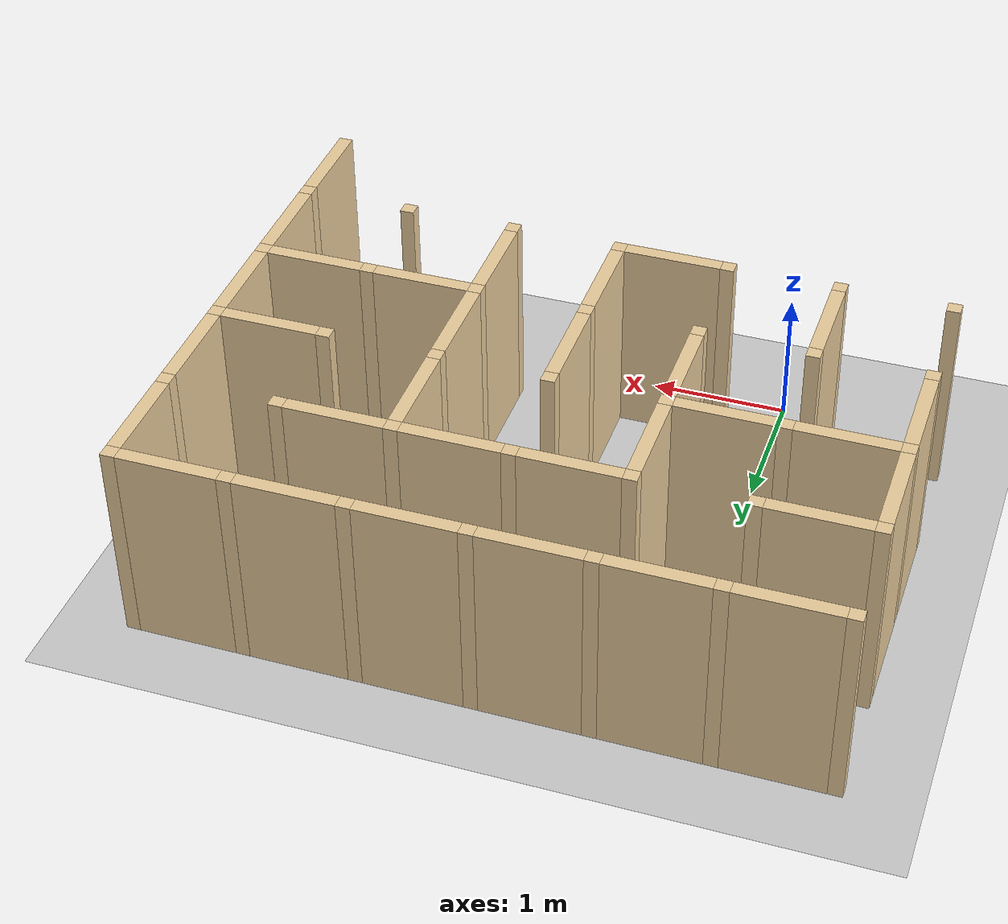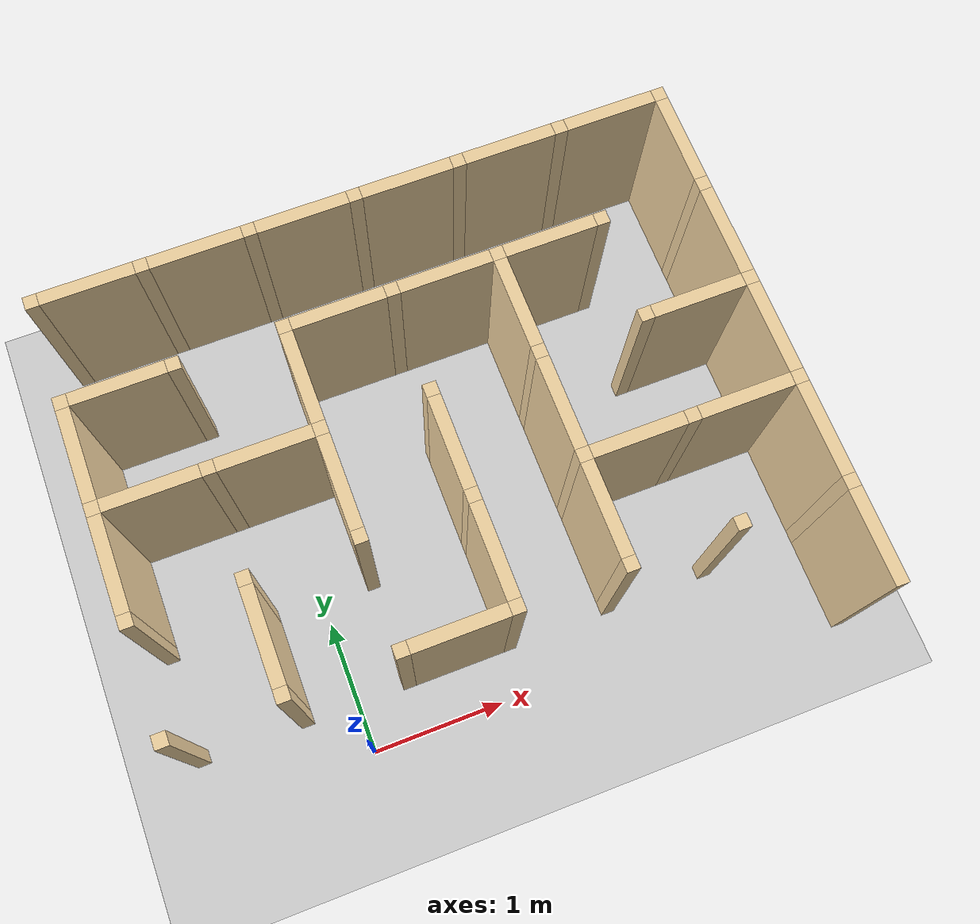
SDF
<sdf version="1.8">
 <world name="maze_world">
  <model name="ground_plane">
   <static>true</static>
   <link name="link">
    <collision name="collision">
     <geometry><plane><normal>0 0 1</normal><size>100 100</size></plane></geometry>
    </collision>
    <visual name="visual">
     <geometry><plane><normal>0 0 1</normal><size>100 100</size></plane></geometry>
     <material><ambient>0.8 0.8 0.8 1</ambient><diffuse>0.8 0.8 0.8 1</diffuse></material>
    </visual>
   </link>
  </model>
  <model name="maze">
   <link name="Wall_3_6_v">
    <collision name="Wall_3_6_v_c">
     <geometry><box><size>0.7 0.1 1.5</size></box></geometry>
     <pose>0 0 0.75 0 0 0</pose>
    </collision>
    <visual name="Wall_3_6_v_v">
     <pose>0 0 0.75 0 0 0</pose>
     <geometry><box><size>0.7 0.1 1.5</size></box></geometry>
     <material>
      <diffuse>0.921569 0.807843 0.615686 1</diffuse>
      <ambient>0.921569 0.807843 0.615686 1</ambient>
     </material>
    </visual>
    <pose>-1.2 1.6 0 0 0 1.5708</pose>
   </link>
   <link name="Wall_3_7_v">
    <collision name="Wall_3_7_v_c">
     <geometry><box><size>0.7 0.1 1.5</size></box></geometry>
     <pose>0 0 0.75 0 0 0</pose>
    </collision>
    <visual name="Wall_3_7_v_v">
     <pose>0 0 0.75 0 0 0</pose>
     <geometry><box><size>0.7 0.1 1.5</size></box></geometry>
     <material>
      <diffuse>0.921569 0.807843 0.615686 1</diffuse>
      <ambient>0.921569 0.807843 0.615686 1</ambient>
     </material>
    </visual>
    <pose>-1.2 2.4 0 0 0 1.5708</pose>
   </link>
   <link name="Wall_4_5_v">
    <collision name="Wall_4_5_v_c">
     <geometry><box><size>0.7 0.1 1.5</size></box></geometry>
     <pose>0 0 0.75 0 0 0</pose>
    </collision>
    <visual name="Wall_4_5_v_v">
     <pose>0 0 0.75 0 0 0</pose>
     <geometry><box><size>0.7 0.1 1.5</size></box></geometry>
     <material>
      <diffuse>0.921569 0.807843 0.615686 1</diffuse>
      <ambient>0.921569 0.807843 0.615686 1</ambient>
     </material>
    </visual>
    <pose>-0.4 0.8 0 0 0 1.5708</pose>
   </link>
   <link name="Wall_5_5_h">
    <collision name="Wall_5_5_h_c">
     <geometry><box><size>0.7 0.1 1.5</size></box></geometry>
     <pose>0 0 0.75 0 0 0</pose>
    </collision>
    <visual name="Wall_5_5_h_v">
     <pose>0 0 0.75 0 0 0</pose>
     <geometry><box><size>0.7 0.1 1.5</size></box></geometry>
     <material>
      <diffuse>0.921569 0.807843 0.615686 1</diffuse>
      <ambient>0.921569 0.807843 0.615686 1</ambient>
     </material>
    </visual>
    <pose>0.8 0.4 0 0 0 0</pose>
   </link>
   <link name="Wall_5_6_v">
    <collision name="Wall_5_6_v_c">
     <geometry><box><size>0.7 0.1 1.5</size></box></geometry>
     <pose>0 0 0.75 0 0 0</pose>
    </collision>
    <visual name="Wall_5_6_v_v">
     <pose>0 0 0.75 0 0 0</pose>
     <geometry><box><size>0.7 0.1 1.5</size></box></geometry>
     <material>
      <diffuse>0.921569 0.807843 0.615686 1</diffuse>
      <ambient>0.921569 0.807843 0.615686 1</ambient>
     </material>
    </visual>
    <pose>0.4 1.6 0 0 0 1.5708</pose>
   </link>
   <link name="Wall_5_7_v">
    <collision name="Wall_5_7_v_c">
     <geometry><box><size>0.7 0.1 1.5</size></box></geometry>
     <pose>0 0 0.75 0 0 0</pose>
    </collision>
    <visual name="Wall_5_7_v_v">
     <pose>0 0 0.75 0 0 0</pose>
     <geometry><box><size>0.7 0.1 1.5</size></box></geometry>
     <material>
      <diffuse>0.921569 0.807843 0.615686 1</diffuse>
      <ambient>0.921569 0.807843 0.615686 1</ambient>
     </material>
    </visual>
    <pose>0.4 2.4 0 0 0 1.5708</pose>
   </link>
   <link name="Wall_6_5_v">
    <collision name="Wall_6_5_v_c">
     <geometry><box><size>0.7 0.1 1.5</size></box></geometry>
     <pose>0 0 0.75 0 0 0</pose>
    </collision>
    <visual name="Wall_6_5_v_v">
     <pose>0 0 0.75 0 0 0</pose>
     <geometry><box><size>0.7 0.1 1.5</size></box></geometry>
     <material>
      <diffuse>0.921569 0.807843 0.615686 1</diffuse>
      <ambient>0.921569 0.807843 0.615686 1</ambient>
     </material>
    </visual>
    <pose>1.2 0.8 0 0 0 1.5708</pose>
   </link>
   <link name="Wall_6_6_v">
    <collision name="Wall_6_6_v_c">
     <geometry><box><size>0.7 0.1 1.5</size></box></geometry>
     <pose>0 0 0.75 0 0 0</pose>
    </collision>
    <visual name="Wall_6_6_v_v">
     <pose>0 0 0.75 0 0 0</pose>
     <geometry><box><size>0.7 0.1 1.5</size></box></geometry>
     <material>
      <diffuse>0.921569 0.807843 0.615686 1</diffuse>
      <ambient>0.921569 0.807843 0.615686 1</ambient>
     </material>
    </visual>
    <pose>1.2 1.6 0 0 0 1.5708</pose>
   </link>
   <link name="Wall_6_7_h">
    <collision name="Wall_6_7_h_c">
     <geometry><box><size>0.7 0.1 1.5</size></box></geometry>
     <pose>0 0 0.75 0 0 0</pose>
    </collision>
    <visual name="Wall_6_7_h_v">
     <pose>0 0 0.75 0 0 0</pose>
     <geometry><box><size>0.7 0.1 1.5</size></box></geometry>
     <material>
      <diffuse>0.921569 0.807843 0.615686 1</diffuse>
      <ambient>0.921569 0.807843 0.615686 1</ambient>
     </material>
    </visual>
    <pose>2.4 1.2 0 0 0 0</pose>
   </link>
   <link name="Wall_6_8_h">
    <collision name="Wall_6_8_h_c">
     <geometry><box><size>0.7 0.1 1.5</size></box></geometry>
     <pose>0 0 0.75 0 0 0</pose>
    </collision>
    <visual name="Wall_6_8_h_v">
     <pose>0 0 0.75 0 0 0</pose>
     <geometry><box><size>0.7 0.1 1.5</size></box></geometry>
     <material>
      <diffuse>0.921569 0.807843 0.615686 1</diffuse>
      <ambient>0.921569 0.807843 0.615686 1</ambient>
     </material>
    </visual>
    <pose>3.2 1.2 0 0 0 0</pose>
   </link>
   <link name="Wall_7_3_h">
    <collision name="Wall_7_3_h_c">
     <geometry><box><size>0.7 0.1 1.5</size></box></geometry>
     <pose>0 0 0.75 0 0 0</pose>
    </collision>
    <visual name="Wall_7_3_h_v">
     <pose>0 0 0.75 0 0 0</pose>
     <geometry><box><size>0.7 0.1 1.5</size></box></geometry>
     <material>
      <diffuse>0.921569 0.807843 0.615686 1</diffuse>
      <ambient>0.921569 0.807843 0.615686 1</ambient>
     </material>
    </visual>
    <pose>-0.8 2.0 0 0 0 0</pose>
   </link>
   <link name="Wall_7_4_h">
    <collision name="Wall_7_4_h_c">
     <geometry><box><size>0.7 0.1 1.5</size></box></geometry>
     <pose>0 0 0.75 0 0 0</pose>
    </collision>
    <visual name="Wall_7_4_h_v">
     <pose>0 0 0.75 0 0 0</pose>
     <geometry><box><size>0.7 0.1 1.5</size></box></geometry>
     <material>
      <diffuse>0.921569 0.807843 0.615686 1</diffuse>
      <ambient>0.921569 0.807843 0.615686 1</ambient>
     </material>
    </visual>
    <pose>0.0 2.0 0 0 0 0</pose>
   </link>
   <link name="Wall_7_5_v">
    <collision name="Wall_7_5_v_c">
     <geometry><box><size>0.7 0.1 1.5</size></box></geometry>
     <pose>0 0 0.75 0 0 0</pose>
    </collision>
    <visual name="Wall_7_5_v_v">
     <pose>0 0 0.75 0 0 0</pose>
     <geometry><box><size>0.7 0.1 1.5</size></box></geometry>
     <material>
      <diffuse>0.921569 0.807843 0.615686 1</diffuse>
      <ambient>0.921569 0.807843 0.615686 1</ambient>
     </material>
    </visual>
    <pose>2.0 0.8 0 0 0 1.5708</pose>
   </link>
   <link name="Wall_7_6_v">
    <collision name="Wall_7_6_v_c">
     <geometry><box><size>0.7 0.1 1.5</size></box></geometry>
     <pose>0 0 0.75 0 0 0</pose>
    </collision>
    <visual name="Wall_7_6_v_v">
     <pose>0 0 0.75 0 0 0</pose>
     <geometry><box><size>0.7 0.1 1.5</size></box></geometry>
     <material>
      <diffuse>0.921569 0.807843 0.615686 1</diffuse>
      <ambient>0.921569 0.807843 0.615686 1</ambient>
     </material>
    </visual>
    <pose>2.0 1.6 0 0 0 1.5708</pose>
   </link>
   <link name="Wall_7_7_v">
    <collision name="Wall_7_7_v_c">
     <geometry><box><size>0.7 0.1 1.5</size></box></geometry>
     <pose>0 0 0.75 0 0 0</pose>
    </collision>
    <visual name="Wall_7_7_v_v">
     <pose>0 0 0.75 0 0 0</pose>
     <geometry><box><size>0.7 0.1 1.5</size></box></geometry>
     <material>
      <diffuse>0.921569 0.807843 0.615686 1</diffuse>
      <ambient>0.921569 0.807843 0.615686 1</ambient>
     </material>
    </visual>
    <pose>2.0 2.4 0 0 0 1.5708</pose>
   </link>
   <link name="Wall_7_8_h">
    <collision name="Wall_7_8_h_c">
     <geometry><box><size>0.7 0.1 1.5</size></box></geometry>
     <pose>0 0 0.75 0 0 0</pose>
    </collision>
    <visual name="Wall_7_8_h_v">
     <pose>0 0 0.75 0 0 0</pose>
     <geometry><box><size>0.7 0.1 1.5</size></box></geometry>
     <material>
      <diffuse>0.921569 0.807843 0.615686 1</diffuse>
      <ambient>0.921569 0.807843 0.615686 1</ambient>
     </material>
    </visual>
    <pose>3.2 2.0 0 0 0 0</pose>
   </link>
   <link name="Wall_8_3_h">
    <collision name="Wall_8_3_h_c">
     <geometry><box><size>0.7 0.1 1.5</size></box></geometry>
     <pose>0 0 0.75 0 0 0</pose>
    </collision>
    <visual name="Wall_8_3_h_v">
     <pose>0 0 0.75 0 0 0</pose>
     <geometry><box><size>0.7 0.1 1.5</size></box></geometry>
     <material>
      <diffuse>0.921569 0.807843 0.615686 1</diffuse>
      <ambient>0.921569 0.807843 0.615686 1</ambient>
     </material>
    </visual>
    <pose>-0.8 2.8 0 0 0 0</pose>
   </link>
   <link name="Wall_8_5_h">
    <collision name="Wall_8_5_h_c">
     <geometry><box><size>0.7 0.1 1.5</size></box></geometry>
     <pose>0 0 0.75 0 0 0</pose>
    </collision>
    <visual name="Wall_8_5_h_v">
     <pose>0 0 0.75 0 0 0</pose>
     <geometry><box><size>0.7 0.1 1.5</size></box></geometry>
     <material>
      <diffuse>0.921569 0.807843 0.615686 1</diffuse>
      <ambient>0.921569 0.807843 0.615686 1</ambient>
     </material>
    </visual>
    <pose>0.8 2.8 0 0 0 0</pose>
   </link>
   <link name="Wall_8_6_h">
    <collision name="Wall_8_6_h_c">
     <geometry><box><size>0.7 0.1 1.5</size></box></geometry>
     <pose>0 0 0.75 0 0 0</pose>
    </collision>
    <visual name="Wall_8_6_h_v">
     <pose>0 0 0.75 0 0 0</pose>
     <geometry><box><size>0.7 0.1 1.5</size></box></geometry>
     <material>
      <diffuse>0.921569 0.807843 0.615686 1</diffuse>
      <ambient>0.921569 0.807843 0.615686 1</ambient>
     </material>
    </visual>
    <pose>1.6 2.8 0 0 0 0</pose>
   </link>
   <link name="Wall_8_7_h">
    <collision name="Wall_8_7_h_c">
     <geometry><box><size>0.7 0.1 1.5</size></box></geometry>
     <pose>0 0 0.75 0 0 0</pose>
    </collision>
    <visual name="Wall_8_7_h_v">
     <pose>0 0 0.75 0 0 0</pose>
     <geometry><box><size>0.7 0.1 1.5</size></box></geometry>
     <material>
      <diffuse>0.921569 0.807843 0.615686 1</diffuse>
      <ambient>0.921569 0.807843 0.615686 1</ambient>
     </material>
    </visual>
    <pose>2.4 2.8 0 0 0 0</pose>
   </link>
   <link name="Wall_9_3_h">
    <collision name="Wall_9_3_h_c">
     <geometry><box><size>0.7 0.1 1.5</size></box></geometry>
     <pose>0 0 0.75 0 0 0</pose>
    </collision>
    <visual name="Wall_9_3_h_v">
     <pose>0 0 0.75 0 0 0</pose>
     <geometry><box><size>0.7 0.1 1.5</size></box></geometry>
     <material>
      <diffuse>0.921569 0.807843 0.615686 1</diffuse>
      <ambient>0.921569 0.807843 0.615686 1</ambient>
     </material>
    </visual>
    <pose>-0.8 3.6 0 0 0 0</pose>
   </link>
   <link name="Wall_9_4_h">
    <collision name="Wall_9_4_h_c">
     <geometry><box><size>0.7 0.1 1.5</size></box></geometry>
     <pose>0 0 0.75 0 0 0</pose>
    </collision>
    <visual name="Wall_9_4_h_v">
     <pose>0 0 0.75 0 0 0</pose>
     <geometry><box><size>0.7 0.1 1.5</size></box></geometry>
     <material>
      <diffuse>0.921569 0.807843 0.615686 1</diffuse>
      <ambient>0.921569 0.807843 0.615686 1</ambient>
     </material>
    </visual>
    <pose>0.0 3.6 0 0 0 0</pose>
   </link>
   <link name="Wall_9_4_v">
    <collision name="Wall_9_4_v_c">
     <geometry><box><size>0.7 0.1 1.5</size></box></geometry>
     <pose>0 0 0.75 0 0 0</pose>
    </collision>
    <visual name="Wall_9_4_v_v">
     <pose>0 0 0.75 0 0 0</pose>
     <geometry><box><size>0.7 0.1 1.5</size></box></geometry>
     <material>
      <diffuse>0.921569 0.807843 0.615686 1</diffuse>
      <ambient>0.921569 0.807843 0.615686 1</ambient>
     </material>
    </visual>
    <pose>3.6 0.0 0 0 0 1.5708</pose>
   </link>
   <link name="Wall_9_5_h">
    <collision name="Wall_9_5_h_c">
     <geometry><box><size>0.7 0.1 1.5</size></box></geometry>
     <pose>0 0 0.75 0 0 0</pose>
    </collision>
    <visual name="Wall_9_5_h_v">
     <pose>0 0 0.75 0 0 0</pose>
     <geometry><box><size>0.7 0.1 1.5</size></box></geometry>
     <material>
      <diffuse>0.921569 0.807843 0.615686 1</diffuse>
      <ambient>0.921569 0.807843 0.615686 1</ambient>
     </material>
    </visual>
    <pose>0.8 3.6 0 0 0 0</pose>
   </link>
   <link name="Wall_9_5_v">
    <collision name="Wall_9_5_v_c">
     <geometry><box><size>0.7 0.1 1.5</size></box></geometry>
     <pose>0 0 0.75 0 0 0</pose>
    </collision>
    <visual name="Wall_9_5_v_v">
     <pose>0 0 0.75 0 0 0</pose>
     <geometry><box><size>0.7 0.1 1.5</size></box></geometry>
     <material>
      <diffuse>0.921569 0.807843 0.615686 1</diffuse>
      <ambient>0.921569 0.807843 0.615686 1</ambient>
     </material>
    </visual>
    <pose>3.6 0.8 0 0 0 1.5708</pose>
   </link>
   <link name="Wall_9_6_h">
    <collision name="Wall_9_6_h_c">
     <geometry><box><size>0.7 0.1 1.5</size></box></geometry>
     <pose>0 0 0.75 0 0 0</pose>
    </collision>
    <visual name="Wall_9_6_h_v">
     <pose>0 0 0.75 0 0 0</pose>
     <geometry><box><size>0.7 0.1 1.5</size></box></geometry>
     <material>
      <diffuse>0.921569 0.807843 0.615686 1</diffuse>
      <ambient>0.921569 0.807843 0.615686 1</ambient>
     </material>
    </visual>
    <pose>1.6 3.6 0 0 0 0</pose>
   </link>
   <link name="Wall_9_6_v">
    <collision name="Wall_9_6_v_c">
     <geometry><box><size>0.7 0.1 1.5</size></box></geometry>
     <pose>0 0 0.75 0 0 0</pose>
    </collision>
    <visual name="Wall_9_6_v_v">
     <pose>0 0 0.75 0 0 0</pose>
     <geometry><box><size>0.7 0.1 1.5</size></box></geometry>
     <material>
      <diffuse>0.921569 0.807843 0.615686 1</diffuse>
      <ambient>0.921569 0.807843 0.615686 1</ambient>
     </material>
    </visual>
    <pose>3.6 1.6 0 0 0 1.5708</pose>
   </link>
   <link name="Wall_9_7_h">
    <collision name="Wall_9_7_h_c">
     <geometry><box><size>0.7 0.1 1.5</size></box></geometry>
     <pose>0 0 0.75 0 0 0</pose>
    </collision>
    <visual name="Wall_9_7_h_v">
     <pose>0 0 0.75 0 0 0</pose>
     <geometry><box><size>0.7 0.1 1.5</size></box></geometry>
     <material>
      <diffuse>0.921569 0.807843 0.615686 1</diffuse>
      <ambient>0.921569 0.807843 0.615686 1</ambient>
     </material>
    </visual>
    <pose>2.4 3.6 0 0 0 0</pose>
   </link>
   <link name="Wall_9_7_v">
    <collision name="Wall_9_7_v_c">
     <geometry><box><size>0.7 0.1 1.5</size></box></geometry>
     <pose>0 0 0.75 0 0 0</pose>
    </collision>
    <visual name="Wall_9_7_v_v">
     <pose>0 0 0.75 0 0 0</pose>
     <geometry><box><size>0.7 0.1 1.5</size></box></geometry>
     <material>
      <diffuse>0.921569 0.807843 0.615686 1</diffuse>
      <ambient>0.921569 0.807843 0.615686 1</ambient>
     </material>
    </visual>
    <pose>3.6 2.4 0 0 0 1.5708</pose>
   </link>
   <link name="Wall_9_8_h">
    <collision name="Wall_9_8_h_c">
     <geometry><box><size>0.7 0.1 1.5</size></box></geometry>
     <pose>0 0 0.75 0 0 0</pose>
    </collision>
    <visual name="Wall_9_8_h_v">
     <pose>0 0 0.75 0 0 0</pose>
     <geometry><box><size>0.7 0.1 1.5</size></box></geometry>
     <material>
      <diffuse>0.921569 0.807843 0.615686 1</diffuse>
      <ambient>0.921569 0.807843 0.615686 1</ambient>
     </material>
    </visual>
    <pose>3.2 3.6 0 0 0 0</pose>
   </link>
   <link name="Wall_9_8_v">
    <collision name="Wall_9_8_v_c">
     <geometry><box><size>0.7 0.1 1.5</size></box></geometry>
     <pose>0 0 0.75 0 0 0</pose>
    </collision>
    <visual name="Wall_9_8_v_v">
     <pose>0 0 0.75 0 0 0</pose>
     <geometry><box><size>0.7 0.1 1.5</size></box></geometry>
     <material>
      <diffuse>0.921569 0.807843 0.615686 1</diffuse>
      <ambient>0.921569 0.807843 0.615686 1</ambient>
     </material>
    </visual>
    <pose>3.6 3.2 0 0 0 1.5708</pose>
   </link>
   <link name="Joint_3_5">
    <collision name="Joint_3_5_c">
     <geometry><box><size>0.1 0.1 1.5</size></box></geometry>
     <pose>0 0 0.75 0 0 0</pose>
    </collision>
    <visual name="Joint_3_5_v">
     <pose>0 0 0.75 0 0 0</pose>
     <geometry><box><size>0.1 0.1 1.5</size></box></geometry>
     <material>
      <diffuse>0.921569 0.807843 0.615686 1</diffuse>
      <ambient>0.921569 0.807843 0.615686 1</ambient>
     </material>
    </visual>
    <pose>-1.2 0.4 0 0 0 0</pose>
   </link>
   <link name="Joint_3_6">
    <collision name="Joint_3_6_c">
     <geometry><box><size>0.1 0.1 1.5</size></box></geometry>
     <pose>0 0 0.75 0 0 0</pose>
    </collision>
    <visual name="Joint_3_6_v">
     <pose>0 0 0.75 0 0 0</pose>
     <geometry><box><size>0.1 0.1 1.5</size></box></geometry>
     <material>
      <diffuse>0.921569 0.807843 0.615686 1</diffuse>
      <ambient>0.921569 0.807843 0.615686 1</ambient>
     </material>
    </visual>
    <pose>-1.2 1.2 0 0 0 0</pose>
   </link>
   <link name="Joint_3_7">
    <collision name="Joint_3_7_c">
     <geometry><box><size>0.1 0.1 1.5</size></box></geometry>
     <pose>0 0 0.75 0 0 0</pose>
    </collision>
    <visual name="Joint_3_7_v">
     <pose>0 0 0.75 0 0 0</pose>
     <geometry><box><size>0.1 0.1 1.5</size></box></geometry>
     <material>
      <diffuse>0.921569 0.807843 0.615686 1</diffuse>
      <ambient>0.921569 0.807843 0.615686 1</ambient>
     </material>
    </visual>
    <pose>-1.2 2.0 0 0 0 0</pose>
   </link>
   <link name="Joint_3_8">
    <collision name="Joint_3_8_c">
     <geometry><box><size>0.1 0.1 1.5</size></box></geometry>
     <pose>0 0 0.75 0 0 0</pose>
    </collision>
    <visual name="Joint_3_8_v">
     <pose>0 0 0.75 0 0 0</pose>
     <geometry><box><size>0.1 0.1 1.5</size></box></geometry>
     <material>
      <diffuse>0.921569 0.807843 0.615686 1</diffuse>
      <ambient>0.921569 0.807843 0.615686 1</ambient>
     </material>
    </visual>
    <pose>-1.2 2.8 0 0 0 0</pose>
   </link>
   <link name="Joint_3_9">
    <collision name="Joint_3_9_c">
     <geometry><box><size>0.1 0.1 1.5</size></box></geometry>
     <pose>0 0 0.75 0 0 0</pose>
    </collision>
    <visual name="Joint_3_9_v">
     <pose>0 0 0.75 0 0 0</pose>
     <geometry><box><size>0.1 0.1 1.5</size></box></geometry>
     <material>
      <diffuse>0.921569 0.807843 0.615686 1</diffuse>
      <ambient>0.921569 0.807843 0.615686 1</ambient>
     </material>
    </visual>
    <pose>-1.2 3.6 0 0 0 0</pose>
   </link>
   <link name="Joint_4_5">
    <collision name="Joint_4_5_c">
     <geometry><box><size>0.1 0.1 1.5</size></box></geometry>
     <pose>0 0 0.75 0 0 0</pose>
    </collision>
    <visual name="Joint_4_5_v">
     <pose>0 0 0.75 0 0 0</pose>
     <geometry><box><size>0.1 0.1 1.5</size></box></geometry>
     <material>
      <diffuse>0.921569 0.807843 0.615686 1</diffuse>
      <ambient>0.921569 0.807843 0.615686 1</ambient>
     </material>
    </visual>
    <pose>-0.4 0.4 0 0 0 0</pose>
   </link>
   <link name="Joint_4_6">
    <collision name="Joint_4_6_c">
     <geometry><box><size>0.1 0.1 1.5</size></box></geometry>
     <pose>0 0 0.75 0 0 0</pose>
    </collision>
    <visual name="Joint_4_6_v">
     <pose>0 0 0.75 0 0 0</pose>
     <geometry><box><size>0.1 0.1 1.5</size></box></geometry>
     <material>
      <diffuse>0.921569 0.807843 0.615686 1</diffuse>
      <ambient>0.921569 0.807843 0.615686 1</ambient>
     </material>
    </visual>
    <pose>-0.4 1.2 0 0 0 0</pose>
   </link>
   <link name="Joint_4_7">
    <collision name="Joint_4_7_c">
     <geometry><box><size>0.1 0.1 1.5</size></box></geometry>
     <pose>0 0 0.75 0 0 0</pose>
    </collision>
    <visual name="Joint_4_7_v">
     <pose>0 0 0.75 0 0 0</pose>
     <geometry><box><size>0.1 0.1 1.5</size></box></geometry>
     <material>
      <diffuse>0.921569 0.807843 0.615686 1</diffuse>
      <ambient>0.921569 0.807843 0.615686 1</ambient>
     </material>
    </visual>
    <pose>-0.4 2.0 0 0 0 0</pose>
   </link>
   <link name="Joint_4_8">
    <collision name="Joint_4_8_c">
     <geometry><box><size>0.1 0.1 1.5</size></box></geometry>
     <pose>0 0 0.75 0 0 0</pose>
    </collision>
    <visual name="Joint_4_8_v">
     <pose>0 0 0.75 0 0 0</pose>
     <geometry><box><size>0.1 0.1 1.5</size></box></geometry>
     <material>
      <diffuse>0.921569 0.807843 0.615686 1</diffuse>
      <ambient>0.921569 0.807843 0.615686 1</ambient>
     </material>
    </visual>
    <pose>-0.4 2.8 0 0 0 0</pose>
   </link>
   <link name="Joint_4_9">
    <collision name="Joint_4_9_c">
     <geometry><box><size>0.1 0.1 1.5</size></box></geometry>
     <pose>0 0 0.75 0 0 0</pose>
    </collision>
    <visual name="Joint_4_9_v">
     <pose>0 0 0.75 0 0 0</pose>
     <geometry><box><size>0.1 0.1 1.5</size></box></geometry>
     <material>
      <diffuse>0.921569 0.807843 0.615686 1</diffuse>
      <ambient>0.921569 0.807843 0.615686 1</ambient>
     </material>
    </visual>
    <pose>-0.4 3.6 0 0 0 0</pose>
   </link>
   <link name="Joint_5_5">
    <collision name="Joint_5_5_c">
     <geometry><box><size>0.1 0.1 1.5</size></box></geometry>
     <pose>0 0 0.75 0 0 0</pose>
    </collision>
    <visual name="Joint_5_5_v">
     <pose>0 0 0.75 0 0 0</pose>
     <geometry><box><size>0.1 0.1 1.5</size></box></geometry>
     <material>
      <diffuse>0.921569 0.807843 0.615686 1</diffuse>
      <ambient>0.921569 0.807843 0.615686 1</ambient>
     </material>
    </visual>
    <pose>0.4 0.4 0 0 0 0</pose>
   </link>
   <link name="Joint_5_6">
    <collision name="Joint_5_6_c">
     <geometry><box><size>0.1 0.1 1.5</size></box></geometry>
     <pose>0 0 0.75 0 0 0</pose>
    </collision>
    <visual name="Joint_5_6_v">
     <pose>0 0 0.75 0 0 0</pose>
     <geometry><box><size>0.1 0.1 1.5</size></box></geometry>
     <material>
      <diffuse>0.921569 0.807843 0.615686 1</diffuse>
      <ambient>0.921569 0.807843 0.615686 1</ambient>
     </material>
    </visual>
    <pose>0.4 1.2 0 0 0 0</pose>
   </link>
   <link name="Joint_5_7">
    <collision name="Joint_5_7_c">
     <geometry><box><size>0.1 0.1 1.5</size></box></geometry>
     <pose>0 0 0.75 0 0 0</pose>
    </collision>
    <visual name="Joint_5_7_v">
     <pose>0 0 0.75 0 0 0</pose>
     <geometry><box><size>0.1 0.1 1.5</size></box></geometry>
     <material>
      <diffuse>0.921569 0.807843 0.615686 1</diffuse>
      <ambient>0.921569 0.807843 0.615686 1</ambient>
     </material>
    </visual>
    <pose>0.4 2.0 0 0 0 0</pose>
   </link>
   <link name="Joint_5_8">
    <collision name="Joint_5_8_c">
     <geometry><box><size>0.1 0.1 1.5</size></box></geometry>
     <pose>0 0 0.75 0 0 0</pose>
    </collision>
    <visual name="Joint_5_8_v">
     <pose>0 0 0.75 0 0 0</pose>
     <geometry><box><size>0.1 0.1 1.5</size></box></geometry>
     <material>
      <diffuse>0.921569 0.807843 0.615686 1</diffuse>
      <ambient>0.921569 0.807843 0.615686 1</ambient>
     </material>
    </visual>
    <pose>0.4 2.8 0 0 0 0</pose>
   </link>
   <link name="Joint_5_9">
    <collision name="Joint_5_9_c">
     <geometry><box><size>0.1 0.1 1.5</size></box></geometry>
     <pose>0 0 0.75 0 0 0</pose>
    </collision>
    <visual name="Joint_5_9_v">
     <pose>0 0 0.75 0 0 0</pose>
     <geometry><box><size>0.1 0.1 1.5</size></box></geometry>
     <material>
      <diffuse>0.921569 0.807843 0.615686 1</diffuse>
      <ambient>0.921569 0.807843 0.615686 1</ambient>
     </material>
    </visual>
    <pose>0.4 3.6 0 0 0 0</pose>
   </link>
   <link name="Joint_6_5">
    <collision name="Joint_6_5_c">
     <geometry><box><size>0.1 0.1 1.5</size></box></geometry>
     <pose>0 0 0.75 0 0 0</pose>
    </collision>
    <visual name="Joint_6_5_v">
     <pose>0 0 0.75 0 0 0</pose>
     <geometry><box><size>0.1 0.1 1.5</size></box></geometry>
     <material>
      <diffuse>0.921569 0.807843 0.615686 1</diffuse>
      <ambient>0.921569 0.807843 0.615686 1</ambient>
     </material>
    </visual>
    <pose>1.2 0.4 0 0 0 0</pose>
   </link>
   <link name="Joint_6_6">
    <collision name="Joint_6_6_c">
     <geometry><box><size>0.1 0.1 1.5</size></box></geometry>
     <pose>0 0 0.75 0 0 0</pose>
    </collision>
    <visual name="Joint_6_6_v">
     <pose>0 0 0.75 0 0 0</pose>
     <geometry><box><size>0.1 0.1 1.5</size></box></geometry>
     <material>
      <diffuse>0.921569 0.807843 0.615686 1</diffuse>
      <ambient>0.921569 0.807843 0.615686 1</ambient>
     </material>
    </visual>
    <pose>1.2 1.2 0 0 0 0</pose>
   </link>
   <link name="Joint_6_7">
    <collision name="Joint_6_7_c">
     <geometry><box><size>0.1 0.1 1.5</size></box></geometry>
     <pose>0 0 0.75 0 0 0</pose>
    </collision>
    <visual name="Joint_6_7_v">
     <pose>0 0 0.75 0 0 0</pose>
     <geometry><box><size>0.1 0.1 1.5</size></box></geometry>
     <material>
      <diffuse>0.921569 0.807843 0.615686 1</diffuse>
      <ambient>0.921569 0.807843 0.615686 1</ambient>
     </material>
    </visual>
    <pose>1.2 2.0 0 0 0 0</pose>
   </link>
   <link name="Joint_6_8">
    <collision name="Joint_6_8_c">
     <geometry><box><size>0.1 0.1 1.5</size></box></geometry>
     <pose>0 0 0.75 0 0 0</pose>
    </collision>
    <visual name="Joint_6_8_v">
     <pose>0 0 0.75 0 0 0</pose>
     <geometry><box><size>0.1 0.1 1.5</size></box></geometry>
     <material>
      <diffuse>0.921569 0.807843 0.615686 1</diffuse>
      <ambient>0.921569 0.807843 0.615686 1</ambient>
     </material>
    </visual>
    <pose>1.2 2.8 0 0 0 0</pose>
   </link>
   <link name="Joint_6_9">
    <collision name="Joint_6_9_c">
     <geometry><box><size>0.1 0.1 1.5</size></box></geometry>
     <pose>0 0 0.75 0 0 0</pose>
    </collision>
    <visual name="Joint_6_9_v">
     <pose>0 0 0.75 0 0 0</pose>
     <geometry><box><size>0.1 0.1 1.5</size></box></geometry>
     <material>
      <diffuse>0.921569 0.807843 0.615686 1</diffuse>
      <ambient>0.921569 0.807843 0.615686 1</ambient>
     </material>
    </visual>
    <pose>1.2 3.6 0 0 0 0</pose>
   </link>
   <link name="Joint_7_5">
    <collision name="Joint_7_5_c">
     <geometry><box><size>0.1 0.1 1.5</size></box></geometry>
     <pose>0 0 0.75 0 0 0</pose>
    </collision>
    <visual name="Joint_7_5_v">
     <pose>0 0 0.75 0 0 0</pose>
     <geometry><box><size>0.1 0.1 1.5</size></box></geometry>
     <material>
      <diffuse>0.921569 0.807843 0.615686 1</diffuse>
      <ambient>0.921569 0.807843 0.615686 1</ambient>
     </material>
    </visual>
    <pose>2.0 0.4 0 0 0 0</pose>
   </link>
   <link name="Joint_7_6">
    <collision name="Joint_7_6_c">
     <geometry><box><size>0.1 0.1 1.5</size></box></geometry>
     <pose>0 0 0.75 0 0 0</pose>
    </collision>
    <visual name="Joint_7_6_v">
     <pose>0 0 0.75 0 0 0</pose>
     <geometry><box><size>0.1 0.1 1.5</size></box></geometry>
     <material>
      <diffuse>0.921569 0.807843 0.615686 1</diffuse>
      <ambient>0.921569 0.807843 0.615686 1</ambient>
     </material>
    </visual>
    <pose>2.0 1.2 0 0 0 0</pose>
   </link>
   <link name="Joint_7_7">
    <collision name="Joint_7_7_c">
     <geometry><box><size>0.1 0.1 1.5</size></box></geometry>
     <pose>0 0 0.75 0 0 0</pose>
    </collision>
    <visual name="Joint_7_7_v">
     <pose>0 0 0.75 0 0 0</pose>
     <geometry><box><size>0.1 0.1 1.5</size></box></geometry>
     <material>
      <diffuse>0.921569 0.807843 0.615686 1</diffuse>
      <ambient>0.921569 0.807843 0.615686 1</ambient>
     </material>
    </visual>
    <pose>2.0 2.0 0 0 0 0</pose>
   </link>
   <link name="Joint_7_8">
    <collision name="Joint_7_8_c">
     <geometry><box><size>0.1 0.1 1.5</size></box></geometry>
     <pose>0 0 0.75 0 0 0</pose>
    </collision>
    <visual name="Joint_7_8_v">
     <pose>0 0 0.75 0 0 0</pose>
     <geometry><box><size>0.1 0.1 1.5</size></box></geometry>
     <material>
      <diffuse>0.921569 0.807843 0.615686 1</diffuse>
      <ambient>0.921569 0.807843 0.615686 1</ambient>
     </material>
    </visual>
    <pose>2.0 2.8 0 0 0 0</pose>
   </link>
   <link name="Joint_7_9">
    <collision name="Joint_7_9_c">
     <geometry><box><size>0.1 0.1 1.5</size></box></geometry>
     <pose>0 0 0.75 0 0 0</pose>
    </collision>
    <visual name="Joint_7_9_v">
     <pose>0 0 0.75 0 0 0</pose>
     <geometry><box><size>0.1 0.1 1.5</size></box></geometry>
     <material>
      <diffuse>0.921569 0.807843 0.615686 1</diffuse>
      <ambient>0.921569 0.807843 0.615686 1</ambient>
     </material>
    </visual>
    <pose>2.0 3.6 0 0 0 0</pose>
   </link>
   <link name="Joint_8_5">
    <collision name="Joint_8_5_c">
     <geometry><box><size>0.1 0.1 1.5</size></box></geometry>
     <pose>0 0 0.75 0 0 0</pose>
    </collision>
    <visual name="Joint_8_5_v">
     <pose>0 0 0.75 0 0 0</pose>
     <geometry><box><size>0.1 0.1 1.5</size></box></geometry>
     <material>
      <diffuse>0.921569 0.807843 0.615686 1</diffuse>
      <ambient>0.921569 0.807843 0.615686 1</ambient>
     </material>
    </visual>
    <pose>2.8 0.4 0 0 0 0</pose>
   </link>
   <link name="Joint_8_6">
    <collision name="Joint_8_6_c">
     <geometry><box><size>0.1 0.1 1.5</size></box></geometry>
     <pose>0 0 0.75 0 0 0</pose>
    </collision>
    <visual name="Joint_8_6_v">
     <pose>0 0 0.75 0 0 0</pose>
     <geometry><box><size>0.1 0.1 1.5</size></box></geometry>
     <material>
      <diffuse>0.921569 0.807843 0.615686 1</diffuse>
      <ambient>0.921569 0.807843 0.615686 1</ambient>
     </material>
    </visual>
    <pose>2.8 1.2 0 0 0 0</pose>
   </link>
   <link name="Joint_8_7">
    <collision name="Joint_8_7_c">
     <geometry><box><size>0.1 0.1 1.5</size></box></geometry>
     <pose>0 0 0.75 0 0 0</pose>
    </collision>
    <visual name="Joint_8_7_v">
     <pose>0 0 0.75 0 0 0</pose>
     <geometry><box><size>0.1 0.1 1.5</size></box></geometry>
     <material>
      <diffuse>0.921569 0.807843 0.615686 1</diffuse>
      <ambient>0.921569 0.807843 0.615686 1</ambient>
     </material>
    </visual>
    <pose>2.8 2.0 0 0 0 0</pose>
   </link>
   <link name="Joint_8_8">
    <collision name="Joint_8_8_c">
     <geometry><box><size>0.1 0.1 1.5</size></box></geometry>
     <pose>0 0 0.75 0 0 0</pose>
    </collision>
    <visual name="Joint_8_8_v">
     <pose>0 0 0.75 0 0 0</pose>
     <geometry><box><size>0.1 0.1 1.5</size></box></geometry>
     <material>
      <diffuse>0.921569 0.807843 0.615686 1</diffuse>
      <ambient>0.921569 0.807843 0.615686 1</ambient>
     </material>
    </visual>
    <pose>2.8 2.8 0 0 0 0</pose>
   </link>
   <link name="Joint_8_9">
    <collision name="Joint_8_9_c">
     <geometry><box><size>0.1 0.1 1.5</size></box></geometry>
     <pose>0 0 0.75 0 0 0</pose>
    </collision>
    <visual name="Joint_8_9_v">
     <pose>0 0 0.75 0 0 0</pose>
     <geometry><box><size>0.1 0.1 1.5</size></box></geometry>
     <material>
      <diffuse>0.921569 0.807843 0.615686 1</diffuse>
      <ambient>0.921569 0.807843 0.615686 1</ambient>
     </material>
    </visual>
    <pose>2.8 3.6 0 0 0 0</pose>
   </link>
   <link name="Joint_9_5">
    <collision name="Joint_9_5_c">
     <geometry><box><size>0.1 0.1 1.5</size></box></geometry>
     <pose>0 0 0.75 0 0 0</pose>
    </collision>
    <visual name="Joint_9_5_v">
     <pose>0 0 0.75 0 0 0</pose>
     <geometry><box><size>0.1 0.1 1.5</size></box></geometry>
     <material>
      <diffuse>0.921569 0.807843 0.615686 1</diffuse>
      <ambient>0.921569 0.807843 0.615686 1</ambient>
     </material>
    </visual>
    <pose>3.6 0.4 0 0 0 0</pose>
   </link>
   <link name="Joint_9_6">
    <collision name="Joint_9_6_c">
     <geometry><box><size>0.1 0.1 1.5</size></box></geometry>
     <pose>0 0 0.75 0 0 0</pose>
    </collision>
    <visual name="Joint_9_6_v">
     <pose>0 0 0.75 0 0 0</pose>
     <geometry><box><size>0.1 0.1 1.5</size></box></geometry>
     <material>
      <diffuse>0.921569 0.807843 0.615686 1</diffuse>
      <ambient>0.921569 0.807843 0.615686 1</ambient>
     </material>
    </visual>
    <pose>3.6 1.2 0 0 0 0</pose>
   </link>
   <link name="Joint_9_7">
    <collision name="Joint_9_7_c">
     <geometry><box><size>0.1 0.1 1.5</size></box></geometry>
     <pose>0 0 0.75 0 0 0</pose>
    </collision>
    <visual name="Joint_9_7_v">
     <pose>0 0 0.75 0 0 0</pose>
     <geometry><box><size>0.1 0.1 1.5</size></box></geometry>
     <material>
      <diffuse>0.921569 0.807843 0.615686 1</diffuse>
      <ambient>0.921569 0.807843 0.615686 1</ambient>
     </material>
    </visual>
    <pose>3.6 2.0 0 0 0 0</pose>
   </link>
   <link name="Joint_9_8">
    <collision name="Joint_9_8_c">
     <geometry><box><size>0.1 0.1 1.5</size></box></geometry>
     <pose>0 0 0.75 0 0 0</pose>
    </collision>
    <visual name="Joint_9_8_v">
     <pose>0 0 0.75 0 0 0</pose>
     <geometry><box><size>0.1 0.1 1.5</size></box></geometry>
     <material>
      <diffuse>0.921569 0.807843 0.615686 1</diffuse>
      <ambient>0.921569 0.807843 0.615686 1</ambient>
     </material>
    </visual>
    <pose>3.6 2.8 0 0 0 0</pose>
   </link>
   <link name="Joint_9_9">
    <collision name="Joint_9_9_c">
     <geometry><box><size>0.1 0.1 1.5</size></box></geometry>
     <pose>0 0 0.75 0 0 0</pose>
    </collision>
    <visual name="Joint_9_9_v">
     <pose>0 0 0.75 0 0 0</pose>
     <geometry><box><size>0.1 0.1 1.5</size></box></geometry>
     <material>
      <diffuse>0.921569 0.807843 0.615686 1</diffuse>
      <ambient>0.921569 0.807843 0.615686 1</ambient>
     </material>
    </visual>
    <pose>3.6 3.6 0 0 0 0</pose>
   </link>
   <static>1</static>
  </model>
 </world>
</sdf>
